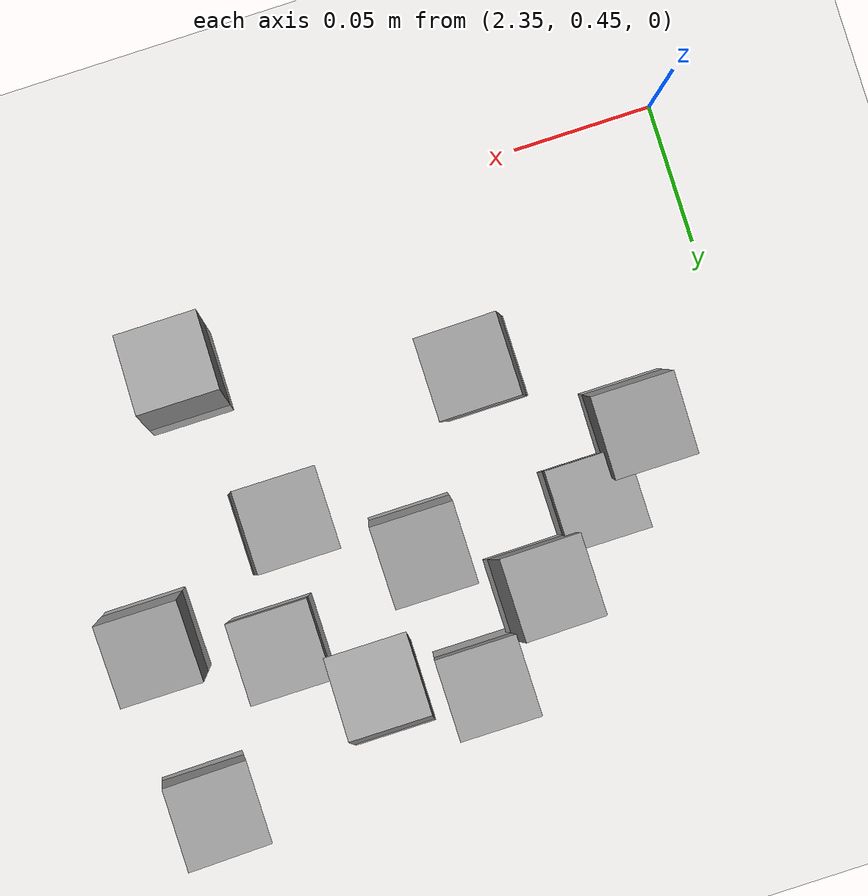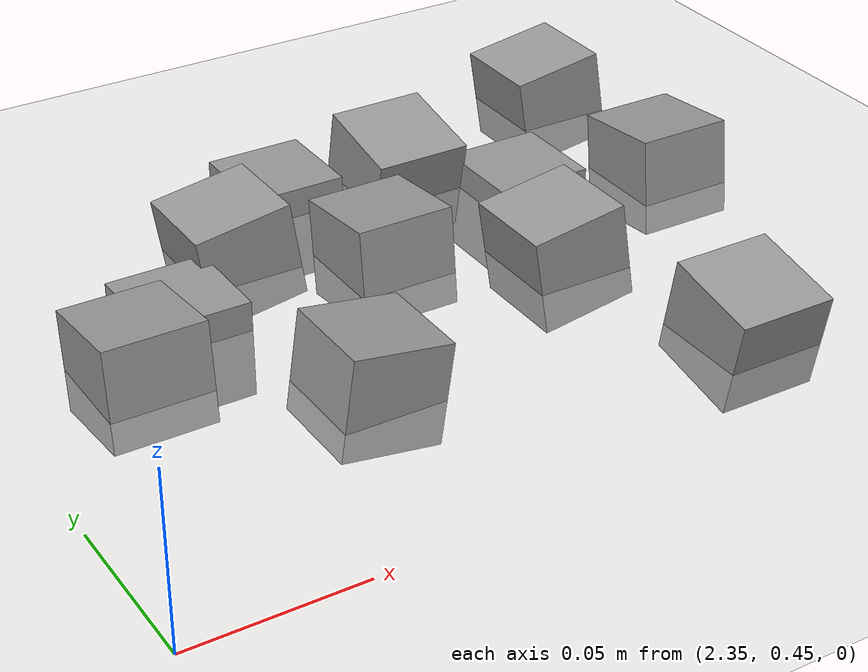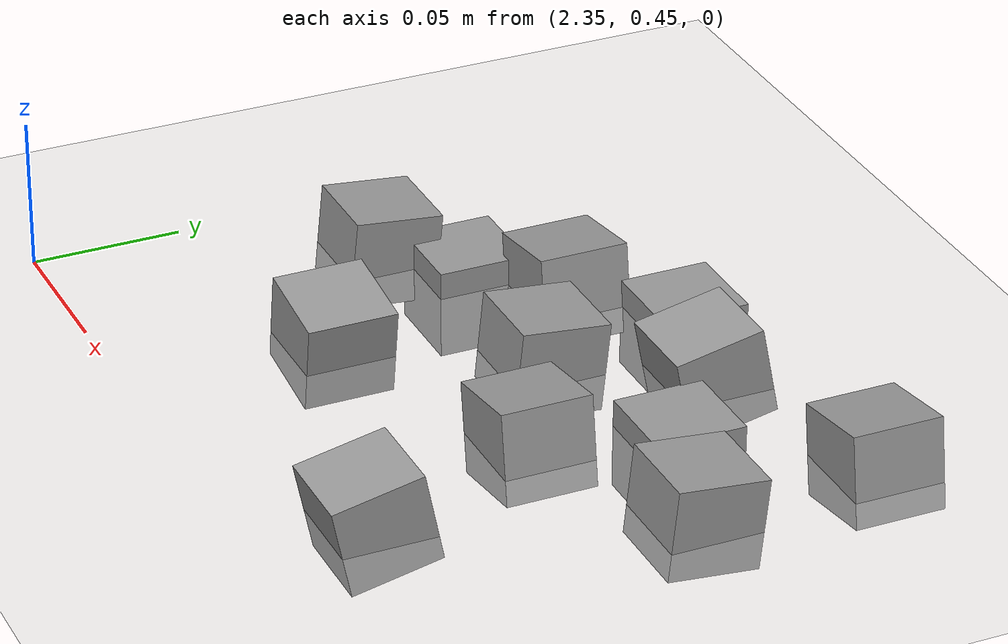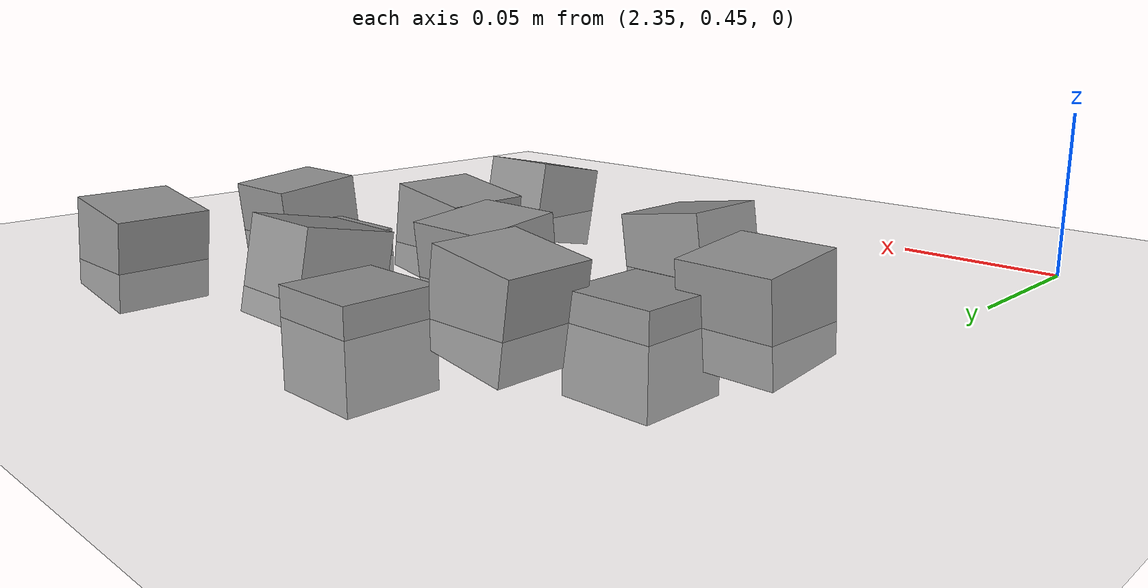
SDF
<sdf version="1.7">
 <world name="default">
  <model name="ground_plane">
   <static>1</static>
   <link name="link">
    <collision name="collision">
     <geometry><plane><normal>0 0 1</normal><size>100 100</size></plane></geometry>
     <surface><friction><ode><mu>100</mu><mu2>50</mu2></ode></friction></surface>
    </collision>
    <visual name="visual">
     <cast_shadows>0</cast_shadows>
     <geometry><plane><normal>0 0 1</normal><size>100 100</size></plane></geometry>
     <material>
      <script><uri>file://media/materials/scripts/gazebo.material</uri><name>Gazebo/Grey</name></script>
     </material>
    </visual>
   </link>
  </model>
  <model name="stone_road_8">
   <link name="link_0_clone_12">
    <inertial>
     <mass>1</mass>
     <inertia>
      <ixx>0.166667</ixx>
      <ixy>0</ixy>
      <ixz>0</ixz>
      <iyy>0.166667</iyy>
      <iyz>0</iyz>
      <izz>0.166667</izz>
     </inertia>
    </inertial>
    <pose>0.142624 -0.262715 0.003778 0.2 -0 0</pose>
    <kinematic>1</kinematic>
    <visual name="visual">
     <geometry><box><size>0.03 0.03 0.03</size></box></geometry>
     <material>
      <lighting>1</lighting>
      <script><uri>file://media/materials/scripts/gazebo.material</uri><name>Gazebo/Grey</name></script>
      <shader type="pixel"><normal_map>__default__</normal_map></shader>
      <ambient>0.3 0.3 0.3 1</ambient>
      <diffuse>0.7 0.7 0.7 1</diffuse>
      <specular>0.01 0.01 0.01 1</specular>
      <emissive>0 0 0 1</emissive>
     </material>
    </visual>
    <collision name="collision">
     <geometry><box><size>0.03 0.03 0.03</size></box></geometry>
     <surface>
      <friction>
       <ode><mu>1</mu><mu2>1</mu2><fdir1>0 0 0</fdir1><slip1>0</slip1><slip2>0</slip2></ode>
       <torsional>
        <coefficient>1</coefficient>
        <patch_radius>0</patch_radius>
        <surface_radius>0</surface_radius>
        <use_patch_radius>1</use_patch_radius>
        <ode><slip>0</slip></ode>
       </torsional>
      </friction>
      <bounce><restitution_coefficient>0</restitution_coefficient><threshold>1e+06</threshold></bounce>
      <contact>
       <collide_without_contact>0</collide_without_contact>
       <collide_without_contact_bitmask>1</collide_without_contact_bitmask>
       <collide_bitmask>1</collide_bitmask>
       <ode>
        <soft_cfm>0</soft_cfm>
        <soft_erp>0.2</soft_erp>
        <kp>1e+13</kp>
        <kd>1</kd>
        <max_vel>0.01</max_vel>
        <min_depth>0</min_depth>
       </ode>
       <bullet>
        <split_impulse>1</split_impulse>
        <split_impulse_penetration_threshold>-0.01</split_impulse_penetration_threshold>
        <soft_cfm>0</soft_cfm>
        <soft_erp>0.2</soft_erp>
        <kp>1e+13</kp>
        <kd>1</kd>
       </bullet>
      </contact>
     </surface>
    </collision>
   </link>
   <link name="link_0_clone_13">
    <inertial>
     <mass>1</mass>
     <inertia>
      <ixx>0.166667</ixx>
      <ixy>0</ixy>
      <ixz>0</ixz>
      <iyy>0.166667</iyy>
      <iyz>0</iyz>
      <izz>0.166667</izz>
     </inertia>
    </inertial>
    <pose>0.107601 -0.134881 0.003778 0.2 -0 0</pose>
    <kinematic>1</kinematic>
    <visual name="visual">
     <geometry><box><size>0.03 0.03 0.03</size></box></geometry>
     <material>
      <lighting>1</lighting>
      <script><uri>file://media/materials/scripts/gazebo.material</uri><name>Gazebo/Grey</name></script>
      <shader type="pixel"><normal_map>__default__</normal_map></shader>
      <ambient>0.3 0.3 0.3 1</ambient>
      <diffuse>0.7 0.7 0.7 1</diffuse>
      <specular>0.01 0.01 0.01 1</specular>
      <emissive>0 0 0 1</emissive>
     </material>
    </visual>
    <collision name="collision">
     <geometry><box><size>0.03 0.03 0.03</size></box></geometry>
     <surface>
      <friction>
       <ode><mu>1</mu><mu2>1</mu2><fdir1>0 0 0</fdir1><slip1>0</slip1><slip2>0</slip2></ode>
       <torsional>
        <coefficient>1</coefficient>
        <patch_radius>0</patch_radius>
        <surface_radius>0</surface_radius>
        <use_patch_radius>1</use_patch_radius>
        <ode><slip>0</slip></ode>
       </torsional>
      </friction>
      <bounce><restitution_coefficient>0</restitution_coefficient><threshold>1e+06</threshold></bounce>
      <contact>
       <collide_without_contact>0</collide_without_contact>
       <collide_without_contact_bitmask>1</collide_without_contact_bitmask>
       <collide_bitmask>1</collide_bitmask>
       <ode>
        <soft_cfm>0</soft_cfm>
        <soft_erp>0.2</soft_erp>
        <kp>1e+13</kp>
        <kd>1</kd>
        <max_vel>0.01</max_vel>
        <min_depth>0</min_depth>
       </ode>
       <bullet>
        <split_impulse>1</split_impulse>
        <split_impulse_penetration_threshold>-0.01</split_impulse_penetration_threshold>
        <soft_cfm>0</soft_cfm>
        <soft_erp>0.2</soft_erp>
        <kp>1e+13</kp>
        <kd>1</kd>
       </bullet>
      </contact>
     </surface>
    </collision>
   </link>
   <link name="link_0_clone_2_clone_2_clone_13_clone_clone_10">
    <inertial>
     <mass>1</mass>
     <inertia>
      <ixx>0.166667</ixx>
      <ixy>0</ixy>
      <ixz>0</ixz>
      <iyy>0.166667</iyy>
      <iyz>0</iyz>
      <izz>0.166667</izz>
     </inertia>
    </inertial>
    <pose>-0.006825 -0.196489 0.003778 -0.1 0 0</pose>
    <kinematic>1</kinematic>
    <visual name="visual">
     <geometry><box><size>0.03 0.03 0.03</size></box></geometry>
     <material>
      <lighting>1</lighting>
      <script><uri>file://media/materials/scripts/gazebo.material</uri><name>Gazebo/Grey</name></script>
      <shader type="pixel"><normal_map>__default__</normal_map></shader>
      <ambient>0.3 0.3 0.3 1</ambient>
      <diffuse>0.7 0.7 0.7 1</diffuse>
      <specular>0.01 0.01 0.01 1</specular>
      <emissive>0 0 0 1</emissive>
     </material>
    </visual>
    <collision name="collision">
     <geometry><box><size>0.03 0.03 0.03</size></box></geometry>
     <surface>
      <friction>
       <ode><mu>1</mu><mu2>1</mu2><fdir1>0 0 0</fdir1><slip1>0</slip1><slip2>0</slip2></ode>
       <torsional>
        <coefficient>1</coefficient>
        <patch_radius>0</patch_radius>
        <surface_radius>0</surface_radius>
        <use_patch_radius>1</use_patch_radius>
        <ode><slip>0</slip></ode>
       </torsional>
      </friction>
      <bounce><restitution_coefficient>0</restitution_coefficient><threshold>1e+06</threshold></bounce>
      <contact>
       <collide_without_contact>0</collide_without_contact>
       <collide_without_contact_bitmask>1</collide_without_contact_bitmask>
       <collide_bitmask>1</collide_bitmask>
       <ode>
        <soft_cfm>0</soft_cfm>
        <soft_erp>0.2</soft_erp>
        <kp>1e+13</kp>
        <kd>1</kd>
        <max_vel>0.01</max_vel>
        <min_depth>0</min_depth>
       </ode>
       <bullet>
        <split_impulse>1</split_impulse>
        <split_impulse_penetration_threshold>-0.01</split_impulse_penetration_threshold>
        <soft_cfm>0</soft_cfm>
        <soft_erp>0.2</soft_erp>
        <kp>1e+13</kp>
        <kd>1</kd>
       </bullet>
      </contact>
     </surface>
    </collision>
   </link>
   <link name="link_0_clone_2_clone_2_clone_13_clone_clone_11">
    <inertial>
     <mass>1</mass>
     <inertia>
      <ixx>0.166667</ixx>
      <ixy>0</ixy>
      <ixz>0</ixz>
      <iyy>0.166667</iyy>
      <iyz>0</iyz>
      <izz>0.166667</izz>
     </inertia>
    </inertial>
    <pose>0.178889 -0.173779 0.003778 -0.1 0 0</pose>
    <kinematic>1</kinematic>
    <visual name="visual">
     <geometry><box><size>0.03 0.03 0.03</size></box></geometry>
     <material>
      <lighting>1</lighting>
      <script><uri>file://media/materials/scripts/gazebo.material</uri><name>Gazebo/Grey</name></script>
      <shader type="pixel"><normal_map>__default__</normal_map></shader>
      <ambient>0.3 0.3 0.3 1</ambient>
      <diffuse>0.7 0.7 0.7 1</diffuse>
      <specular>0.01 0.01 0.01 1</specular>
      <emissive>0 0 0 1</emissive>
     </material>
    </visual>
    <collision name="collision">
     <geometry><box><size>0.03 0.03 0.03</size></box></geometry>
     <surface>
      <friction>
       <ode><mu>1</mu><mu2>1</mu2><fdir1>0 0 0</fdir1><slip1>0</slip1><slip2>0</slip2></ode>
       <torsional>
        <coefficient>1</coefficient>
        <patch_radius>0</patch_radius>
        <surface_radius>0</surface_radius>
        <use_patch_radius>1</use_patch_radius>
        <ode><slip>0</slip></ode>
       </torsional>
      </friction>
      <bounce><restitution_coefficient>0</restitution_coefficient><threshold>1e+06</threshold></bounce>
      <contact>
       <collide_without_contact>0</collide_without_contact>
       <collide_without_contact_bitmask>1</collide_without_contact_bitmask>
       <collide_bitmask>1</collide_bitmask>
       <ode>
        <soft_cfm>0</soft_cfm>
        <soft_erp>0.2</soft_erp>
        <kp>1e+13</kp>
        <kd>1</kd>
        <max_vel>0.01</max_vel>
        <min_depth>0</min_depth>
       </ode>
       <bullet>
        <split_impulse>1</split_impulse>
        <split_impulse_penetration_threshold>-0.01</split_impulse_penetration_threshold>
        <soft_cfm>0</soft_cfm>
        <soft_erp>0.2</soft_erp>
        <kp>1e+13</kp>
        <kd>1</kd>
       </bullet>
      </contact>
     </surface>
    </collision>
   </link>
   <link name="link_0_clone_2_clone_2_clone_13_clone_clone_12">
    <inertial>
     <mass>1</mass>
     <inertia>
      <ixx>0.166667</ixx>
      <ixy>0</ixy>
      <ixz>0</ixz>
      <iyy>0.166667</iyy>
      <iyz>0</iyz>
      <izz>0.166667</izz>
     </inertia>
    </inertial>
    <pose>0.078701 -0.177208 0.003778 -0.1 0 0</pose>
    <kinematic>1</kinematic>
    <visual name="visual">
     <geometry><box><size>0.03 0.03 0.03</size></box></geometry>
     <material>
      <lighting>1</lighting>
      <script><uri>file://media/materials/scripts/gazebo.material</uri><name>Gazebo/Grey</name></script>
      <shader type="pixel"><normal_map>__default__</normal_map></shader>
      <ambient>0.3 0.3 0.3 1</ambient>
      <diffuse>0.7 0.7 0.7 1</diffuse>
      <specular>0.01 0.01 0.01 1</specular>
      <emissive>0 0 0 1</emissive>
     </material>
    </visual>
    <collision name="collision">
     <geometry><box><size>0.03 0.03 0.03</size></box></geometry>
     <surface>
      <friction>
       <ode><mu>1</mu><mu2>1</mu2><fdir1>0 0 0</fdir1><slip1>0</slip1><slip2>0</slip2></ode>
       <torsional>
        <coefficient>1</coefficient>
        <patch_radius>0</patch_radius>
        <surface_radius>0</surface_radius>
        <use_patch_radius>1</use_patch_radius>
        <ode><slip>0</slip></ode>
       </torsional>
      </friction>
      <bounce><restitution_coefficient>0</restitution_coefficient><threshold>1e+06</threshold></bounce>
      <contact>
       <collide_without_contact>0</collide_without_contact>
       <collide_without_contact_bitmask>1</collide_without_contact_bitmask>
       <collide_bitmask>1</collide_bitmask>
       <ode>
        <soft_cfm>0</soft_cfm>
        <soft_erp>0.2</soft_erp>
        <kp>1e+13</kp>
        <kd>1</kd>
        <max_vel>0.01</max_vel>
        <min_depth>0</min_depth>
       </ode>
       <bullet>
        <split_impulse>1</split_impulse>
        <split_impulse_penetration_threshold>-0.01</split_impulse_penetration_threshold>
        <soft_cfm>0</soft_cfm>
        <soft_erp>0.2</soft_erp>
        <kp>1e+13</kp>
        <kd>1</kd>
       </bullet>
      </contact>
     </surface>
    </collision>
   </link>
   <link name="link_0_clone_2_clone_2_clone_13_clone_clone_16_clone_16">
    <inertial>
     <mass>1</mass>
     <inertia>
      <ixx>0.166667</ixx>
      <ixy>0</ixy>
      <ixz>0</ixz>
      <iyy>0.166667</iyy>
      <iyz>0</iyz>
      <izz>0.166667</izz>
     </inertia>
    </inertial>
    <pose>0.071475 -0.124425 -0.006222 0 -0 0</pose>
    <kinematic>1</kinematic>
    <visual name="visual">
     <geometry><box><size>0.03 0.03 0.03</size></box></geometry>
     <material>
      <lighting>1</lighting>
      <script><uri>file://media/materials/scripts/gazebo.material</uri><name>Gazebo/Grey</name></script>
      <shader type="pixel"><normal_map>__default__</normal_map></shader>
      <ambient>0.3 0.3 0.3 1</ambient>
      <diffuse>0.7 0.7 0.7 1</diffuse>
      <specular>0.01 0.01 0.01 1</specular>
      <emissive>0 0 0 1</emissive>
     </material>
    </visual>
    <collision name="collision">
     <geometry><box><size>0.03 0.03 0.03</size></box></geometry>
     <surface>
      <friction>
       <ode><mu>1</mu><mu2>1</mu2><fdir1>0 0 0</fdir1><slip1>0</slip1><slip2>0</slip2></ode>
       <torsional>
        <coefficient>1</coefficient>
        <patch_radius>0</patch_radius>
        <surface_radius>0</surface_radius>
        <use_patch_radius>1</use_patch_radius>
        <ode><slip>0</slip></ode>
       </torsional>
      </friction>
      <bounce><restitution_coefficient>0</restitution_coefficient><threshold>1e+06</threshold></bounce>
      <contact>
       <collide_without_contact>0</collide_without_contact>
       <collide_without_contact_bitmask>1</collide_without_contact_bitmask>
       <collide_bitmask>1</collide_bitmask>
       <ode>
        <soft_cfm>0</soft_cfm>
        <soft_erp>0.2</soft_erp>
        <kp>1e+13</kp>
        <kd>1</kd>
        <max_vel>0.01</max_vel>
        <min_depth>0</min_depth>
       </ode>
       <bullet>
        <split_impulse>1</split_impulse>
        <split_impulse_penetration_threshold>-0.01</split_impulse_penetration_threshold>
        <soft_cfm>0</soft_cfm>
        <soft_erp>0.2</soft_erp>
        <kp>1e+13</kp>
        <kd>1</kd>
       </bullet>
      </contact>
     </surface>
    </collision>
   </link>
   <link name="link_0_clone_2_clone_2_clone_13_clone_clone_16_clone_17">
    <inertial>
     <mass>1</mass>
     <inertia>
      <ixx>0.166667</ixx>
      <ixy>0</ixy>
      <ixz>0</ixz>
      <iyy>0.166667</iyy>
      <iyz>0</iyz>
      <izz>0.166667</izz>
     </inertia>
    </inertial>
    <pose>0.014877 -0.175392 -0.006222 0 -0 0</pose>
    <kinematic>1</kinematic>
    <visual name="visual">
     <geometry><box><size>0.03 0.03 0.03</size></box></geometry>
     <material>
      <lighting>1</lighting>
      <script><uri>file://media/materials/scripts/gazebo.material</uri><name>Gazebo/Grey</name></script>
      <shader type="pixel"><normal_map>__default__</normal_map></shader>
      <ambient>0.3 0.3 0.3 1</ambient>
      <diffuse>0.7 0.7 0.7 1</diffuse>
      <specular>0.01 0.01 0.01 1</specular>
      <emissive>0 0 0 1</emissive>
     </material>
    </visual>
    <collision name="collision">
     <geometry><box><size>0.03 0.03 0.03</size></box></geometry>
     <surface>
      <friction>
       <ode><mu>1</mu><mu2>1</mu2><fdir1>0 0 0</fdir1><slip1>0</slip1><slip2>0</slip2></ode>
       <torsional>
        <coefficient>1</coefficient>
        <patch_radius>0</patch_radius>
        <surface_radius>0</surface_radius>
        <use_patch_radius>1</use_patch_radius>
        <ode><slip>0</slip></ode>
       </torsional>
      </friction>
      <bounce><restitution_coefficient>0</restitution_coefficient><threshold>1e+06</threshold></bounce>
      <contact>
       <collide_without_contact>0</collide_without_contact>
       <collide_without_contact_bitmask>1</collide_without_contact_bitmask>
       <collide_bitmask>1</collide_bitmask>
       <ode>
        <soft_cfm>0</soft_cfm>
        <soft_erp>0.2</soft_erp>
        <kp>1e+13</kp>
        <kd>1</kd>
        <max_vel>0.01</max_vel>
        <min_depth>0</min_depth>
       </ode>
       <bullet>
        <split_impulse>1</split_impulse>
        <split_impulse_penetration_threshold>-0.01</split_impulse_penetration_threshold>
        <soft_cfm>0</soft_cfm>
        <soft_erp>0.2</soft_erp>
        <kp>1e+13</kp>
        <kd>1</kd>
       </bullet>
      </contact>
     </surface>
    </collision>
   </link>
   <link name="link_0_clone_2_clone_2_clone_13_clone_clone_16_clone_18">
    <inertial>
     <mass>1</mass>
     <inertia>
      <ixx>0.166667</ixx>
      <ixy>0</ixy>
      <ixz>0</ixz>
      <iyy>0.166667</iyy>
      <iyz>0</iyz>
      <izz>0.166667</izz>
     </inertia>
    </inertial>
    <pose>0.137197 -0.158693 -0.006222 0 -0 0</pose>
    <kinematic>1</kinematic>
    <visual name="visual">
     <geometry><box><size>0.03 0.03 0.03</size></box></geometry>
     <material>
      <lighting>1</lighting>
      <script><uri>file://media/materials/scripts/gazebo.material</uri><name>Gazebo/Grey</name></script>
      <shader type="pixel"><normal_map>__default__</normal_map></shader>
      <ambient>0.3 0.3 0.3 1</ambient>
      <diffuse>0.7 0.7 0.7 1</diffuse>
      <specular>0.01 0.01 0.01 1</specular>
      <emissive>0 0 0 1</emissive>
     </material>
    </visual>
    <collision name="collision">
     <geometry><box><size>0.03 0.03 0.03</size></box></geometry>
     <surface>
      <friction>
       <ode><mu>1</mu><mu2>1</mu2><fdir1>0 0 0</fdir1><slip1>0</slip1><slip2>0</slip2></ode>
       <torsional>
        <coefficient>1</coefficient>
        <patch_radius>0</patch_radius>
        <surface_radius>0</surface_radius>
        <use_patch_radius>1</use_patch_radius>
        <ode><slip>0</slip></ode>
       </torsional>
      </friction>
      <bounce><restitution_coefficient>0</restitution_coefficient><threshold>1e+06</threshold></bounce>
      <contact>
       <collide_without_contact>0</collide_without_contact>
       <collide_without_contact_bitmask>1</collide_without_contact_bitmask>
       <collide_bitmask>1</collide_bitmask>
       <ode>
        <soft_cfm>0</soft_cfm>
        <soft_erp>0.2</soft_erp>
        <kp>1e+13</kp>
        <kd>1</kd>
        <max_vel>0.01</max_vel>
        <min_depth>0</min_depth>
       </ode>
       <bullet>
        <split_impulse>1</split_impulse>
        <split_impulse_penetration_threshold>-0.01</split_impulse_penetration_threshold>
        <soft_cfm>0</soft_cfm>
        <soft_erp>0.2</soft_erp>
        <kp>1e+13</kp>
        <kd>1</kd>
       </bullet>
      </contact>
     </surface>
    </collision>
   </link>
   <link name="link_0_clone_2_clone_2_clone_4">
    <inertial>
     <mass>1</mass>
     <inertia>
      <ixx>0.166667</ixx>
      <ixy>0</ixy>
      <ixz>0</ixz>
      <iyy>0.166667</iyy>
      <iyz>0</iyz>
      <izz>0.166667</izz>
     </inertia>
    </inertial>
    <pose>0.042048 -0.151731 0.003778 0 -0.15 0</pose>
    <kinematic>1</kinematic>
    <visual name="visual">
     <geometry><box><size>0.03 0.03 0.03</size></box></geometry>
     <material>
      <lighting>1</lighting>
      <script><uri>file://media/materials/scripts/gazebo.material</uri><name>Gazebo/Grey</name></script>
      <shader type="pixel"><normal_map>__default__</normal_map></shader>
      <ambient>0.3 0.3 0.3 1</ambient>
      <diffuse>0.7 0.7 0.7 1</diffuse>
      <specular>0.01 0.01 0.01 1</specular>
      <emissive>0 0 0 1</emissive>
     </material>
    </visual>
    <collision name="collision">
     <geometry><box><size>0.03 0.03 0.03</size></box></geometry>
     <surface>
      <friction>
       <ode><mu>1</mu><mu2>1</mu2><fdir1>0 0 0</fdir1><slip1>0</slip1><slip2>0</slip2></ode>
       <torsional>
        <coefficient>1</coefficient>
        <patch_radius>0</patch_radius>
        <surface_radius>0</surface_radius>
        <use_patch_radius>1</use_patch_radius>
        <ode><slip>0</slip></ode>
       </torsional>
      </friction>
      <bounce><restitution_coefficient>0</restitution_coefficient><threshold>1e+06</threshold></bounce>
      <contact>
       <collide_without_contact>0</collide_without_contact>
       <collide_without_contact_bitmask>1</collide_without_contact_bitmask>
       <collide_bitmask>1</collide_bitmask>
       <ode>
        <soft_cfm>0</soft_cfm>
        <soft_erp>0.2</soft_erp>
        <kp>1e+13</kp>
        <kd>1</kd>
        <max_vel>0.01</max_vel>
        <min_depth>0</min_depth>
       </ode>
       <bullet>
        <split_impulse>1</split_impulse>
        <split_impulse_penetration_threshold>-0.01</split_impulse_penetration_threshold>
        <soft_cfm>0</soft_cfm>
        <soft_erp>0.2</soft_erp>
        <kp>1e+13</kp>
        <kd>1</kd>
       </bullet>
      </contact>
     </surface>
    </collision>
   </link>
   <link name="link_0_clone_2_clone_2_clone_7">
    <inertial>
     <mass>1</mass>
     <inertia>
      <ixx>0.166667</ixx>
      <ixy>0</ixy>
      <ixz>0</ixz>
      <iyy>0.166667</iyy>
      <iyz>0</iyz>
      <izz>0.166667</izz>
     </inertia>
    </inertial>
    <pose>0.175499 -0.112442 0.003778 0 -0.15 0</pose>
    <kinematic>1</kinematic>
    <visual name="visual">
     <geometry><box><size>0.03 0.03 0.03</size></box></geometry>
     <material>
      <lighting>1</lighting>
      <script><uri>file://media/materials/scripts/gazebo.material</uri><name>Gazebo/Grey</name></script>
      <shader type="pixel"><normal_map>__default__</normal_map></shader>
      <ambient>0.3 0.3 0.3 1</ambient>
      <diffuse>0.7 0.7 0.7 1</diffuse>
      <specular>0.01 0.01 0.01 1</specular>
      <emissive>0 0 0 1</emissive>
     </material>
    </visual>
    <collision name="collision">
     <geometry><box><size>0.03 0.03 0.03</size></box></geometry>
     <surface>
      <friction>
       <ode><mu>1</mu><mu2>1</mu2><fdir1>0 0 0</fdir1><slip1>0</slip1><slip2>0</slip2></ode>
       <torsional>
        <coefficient>1</coefficient>
        <patch_radius>0</patch_radius>
        <surface_radius>0</surface_radius>
        <use_patch_radius>1</use_patch_radius>
        <ode><slip>0</slip></ode>
       </torsional>
      </friction>
      <bounce><restitution_coefficient>0</restitution_coefficient><threshold>1e+06</threshold></bounce>
      <contact>
       <collide_without_contact>0</collide_without_contact>
       <collide_without_contact_bitmask>1</collide_without_contact_bitmask>
       <collide_bitmask>1</collide_bitmask>
       <ode>
        <soft_cfm>0</soft_cfm>
        <soft_erp>0.2</soft_erp>
        <kp>1e+13</kp>
        <kd>1</kd>
        <max_vel>0.01</max_vel>
        <min_depth>0</min_depth>
       </ode>
       <bullet>
        <split_impulse>1</split_impulse>
        <split_impulse_penetration_threshold>-0.01</split_impulse_penetration_threshold>
        <soft_cfm>0</soft_cfm>
        <soft_erp>0.2</soft_erp>
        <kp>1e+13</kp>
        <kd>1</kd>
       </bullet>
      </contact>
     </surface>
    </collision>
   </link>
   <link name="link_0_clone_2_clone_2_clone_8">
    <inertial>
     <mass>1</mass>
     <inertia>
      <ixx>0.166667</ixx>
      <ixy>0</ixy>
      <ixz>0</ixz>
      <iyy>0.166667</iyy>
      <iyz>0</iyz>
      <izz>0.166667</izz>
     </inertia>
    </inertial>
    <pose>0.122141 -0.201696 0.003778 0 -0.15 0</pose>
    <kinematic>1</kinematic>
    <visual name="visual">
     <geometry><box><size>0.03 0.03 0.03</size></box></geometry>
     <material>
      <lighting>1</lighting>
      <script><uri>file://media/materials/scripts/gazebo.material</uri><name>Gazebo/Grey</name></script>
      <shader type="pixel"><normal_map>__default__</normal_map></shader>
      <ambient>0.3 0.3 0.3 1</ambient>
      <diffuse>0.7 0.7 0.7 1</diffuse>
      <specular>0.01 0.01 0.01 1</specular>
      <emissive>0 0 0 1</emissive>
     </material>
    </visual>
    <collision name="collision">
     <geometry><box><size>0.03 0.03 0.03</size></box></geometry>
     <surface>
      <friction>
       <ode><mu>1</mu><mu2>1</mu2><fdir1>0 0 0</fdir1><slip1>0</slip1><slip2>0</slip2></ode>
       <torsional>
        <coefficient>1</coefficient>
        <patch_radius>0</patch_radius>
        <surface_radius>0</surface_radius>
        <use_patch_radius>1</use_patch_radius>
        <ode><slip>0</slip></ode>
       </torsional>
      </friction>
      <bounce><restitution_coefficient>0</restitution_coefficient><threshold>1e+06</threshold></bounce>
      <contact>
       <collide_without_contact>0</collide_without_contact>
       <collide_without_contact_bitmask>1</collide_without_contact_bitmask>
       <collide_bitmask>1</collide_bitmask>
       <ode>
        <soft_cfm>0</soft_cfm>
        <soft_erp>0.2</soft_erp>
        <kp>1e+13</kp>
        <kd>1</kd>
        <max_vel>0.01</max_vel>
        <min_depth>0</min_depth>
       </ode>
       <bullet>
        <split_impulse>1</split_impulse>
        <split_impulse_penetration_threshold>-0.01</split_impulse_penetration_threshold>
        <soft_cfm>0</soft_cfm>
        <soft_erp>0.2</soft_erp>
        <kp>1e+13</kp>
        <kd>1</kd>
       </bullet>
      </contact>
     </surface>
    </collision>
   </link>
   <link name="link_0_clone_2_clone_7">
    <inertial>
     <mass>1</mass>
     <inertia>
      <ixx>0.166667</ixx>
      <ixy>0</ixy>
      <ixz>0</ixz>
      <iyy>0.166667</iyy>
      <iyz>0</iyz>
      <izz>0.166667</izz>
     </inertia>
    </inertial>
    <pose>0.04255 -0.232691 0.003778 0 0.15 0</pose>
    <kinematic>1</kinematic>
    <visual name="visual">
     <geometry><box><size>0.03 0.03 0.03</size></box></geometry>
     <material>
      <lighting>1</lighting>
      <script><uri>file://media/materials/scripts/gazebo.material</uri><name>Gazebo/Grey</name></script>
      <shader type="pixel"><normal_map>__default__</normal_map></shader>
      <ambient>0.3 0.3 0.3 1</ambient>
      <diffuse>0.7 0.7 0.7 1</diffuse>
      <specular>0.01 0.01 0.01 1</specular>
      <emissive>0 0 0 1</emissive>
     </material>
    </visual>
    <collision name="collision">
     <geometry><box><size>0.03 0.03 0.03</size></box></geometry>
     <surface>
      <friction>
       <ode><mu>1</mu><mu2>1</mu2><fdir1>0 0 0</fdir1><slip1>0</slip1><slip2>0</slip2></ode>
       <torsional>
        <coefficient>1</coefficient>
        <patch_radius>0</patch_radius>
        <surface_radius>0</surface_radius>
        <use_patch_radius>1</use_patch_radius>
        <ode><slip>0</slip></ode>
       </torsional>
      </friction>
      <bounce><restitution_coefficient>0</restitution_coefficient><threshold>1e+06</threshold></bounce>
      <contact>
       <collide_without_contact>0</collide_without_contact>
       <collide_without_contact_bitmask>1</collide_without_contact_bitmask>
       <collide_bitmask>1</collide_bitmask>
       <ode>
        <soft_cfm>0</soft_cfm>
        <soft_erp>0.2</soft_erp>
        <kp>1e+13</kp>
        <kd>1</kd>
        <max_vel>0.01</max_vel>
        <min_depth>0</min_depth>
       </ode>
       <bullet>
        <split_impulse>1</split_impulse>
        <split_impulse_penetration_threshold>-0.01</split_impulse_penetration_threshold>
        <soft_cfm>0</soft_cfm>
        <soft_erp>0.2</soft_erp>
        <kp>1e+13</kp>
        <kd>1</kd>
       </bullet>
      </contact>
     </surface>
    </collision>
   </link>
   <static>0</static>
   <pose>2.39572 0.751546 -0 0 -0 0</pose>
  </model>
 </world>
</sdf>
